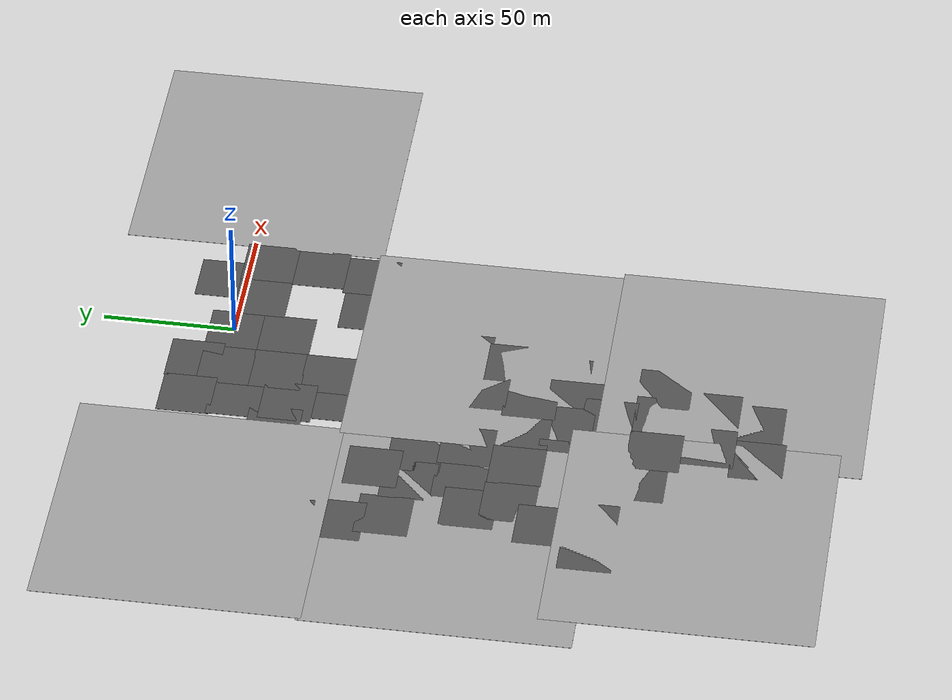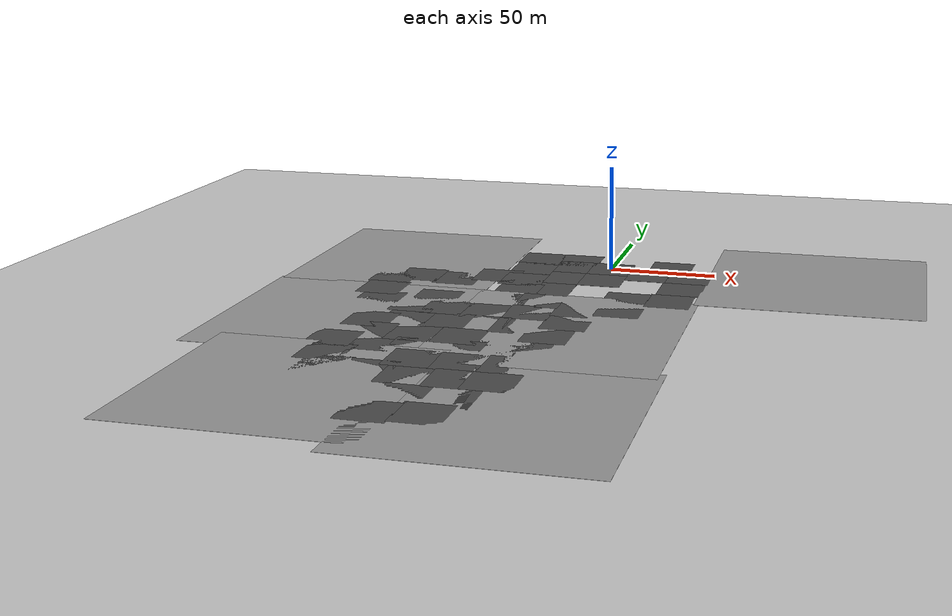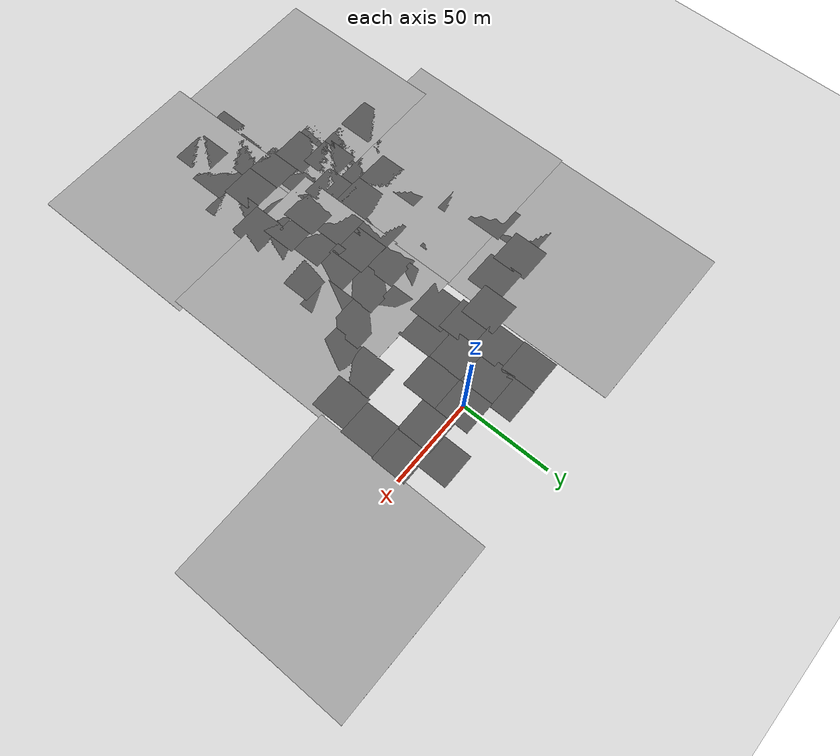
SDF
<sdf version="1.6">
 <world name="default">
  <light name="sun" type="directional">
   <pose>0 0 10 0 -0 0</pose>
   <diffuse>0.8 0.8 0.8 1</diffuse>
   <specular>0.2 0.2 0.2 1</specular>
   <attenuation>
    <range>1000</range>
    <constant>0.9</constant>
    <linear>0.01</linear>
    <quadratic>0.001</quadratic>
   </attenuation>
   <direction>-0.5 0.1 -0.9</direction>
  </light>
  <model name="ground_plane">
   <static>1</static>
   <link name="link">
    <collision name="collision">
     <geometry><plane><normal>0 0 1</normal><size>100 100</size></plane></geometry>
     <surface><friction><ode><mu>100</mu><mu2>50</mu2></ode></friction></surface>
    </collision>
    <visual name="visual">
     <cast_shadows>0</cast_shadows>
     <geometry><plane><normal>0 0 1</normal><size>100 100</size></plane></geometry>
     <material>
      <script><uri>file://media/materials/scripts/gazebo.material</uri><name>Gazebo/Grey</name></script>
     </material>
    </visual>
    <velocity_decay><linear>0</linear><angular>0</angular></velocity_decay>
   </link>
  </model>
  <physics name="default_physics" default="0" type="ode">
   <max_step_size>0.01</max_step_size>
   <real_time_factor>1</real_time_factor>
   <real_time_update_rate>100</real_time_update_rate>
  </physics>
  <scene><ambient>0.4 0.4 0.4 1</ambient><background>0.7 0.7 0.7 1</background><shadows>1</shadows></scene>
  <model name="asphalt_plane">
   <static>1</static>
   <link name="link">
    <collision name="collision"><geometry><box><size>20 20 0.1</size></box></geometry></collision>
    <visual name="visual">
     <cast_shadows>0</cast_shadows>
     <geometry><box><size>20 20 0.1</size></box></geometry>
     <material>
      <script>
       <uri>model://asphalt_plane/materials/scripts</uri>
       <uri>model://asphalt_plane/materials/textures</uri>
       <name>vrc/asphalt</name>
      </script>
     </material>
    </visual>
    <velocity_decay><linear>0</linear><angular>0</angular></velocity_decay>
   </link>
   <pose>0.076733 -0.110379 0 0 -0 0</pose>
  </model>
  <gravity>0 0 -9.8</gravity>
  <magnetic_field>6e-06 2.3e-05 -4.2e-05</magnetic_field>
  <atmosphere type="adiabatic"/>
  <spherical_coordinates>
   <surface_model>EARTH_WGS84</surface_model>
   <latitude_deg>0</latitude_deg>
   <longitude_deg>0</longitude_deg>
   <elevation>0</elevation>
   <heading_deg>0</heading_deg>
  </spherical_coordinates>
  <model name="ground_plane_0">
   <static>1</static>
   <link name="link">
    <collision name="collision">
     <geometry><plane><normal>0 0 1</normal><size>100 100</size></plane></geometry>
     <surface><friction><ode><mu>100</mu><mu2>50</mu2></ode></friction></surface>
    </collision>
    <visual name="visual">
     <cast_shadows>0</cast_shadows>
     <geometry><plane><normal>0 0 1</normal><size>100 100</size></plane></geometry>
     <material>
      <script><uri>file://media/materials/scripts/gazebo.material</uri><name>Gazebo/Grey</name></script>
     </material>
    </visual>
   </link>
   <pose>-0.063796 -98.283 0 0 -0 0</pose>
  </model>
  <model name="ground_plane_1">
   <static>1</static>
   <link name="link">
    <collision name="collision">
     <geometry><plane><normal>0 0 1</normal><size>100 100</size></plane></geometry>
     <surface><friction><ode><mu>100</mu><mu2>50</mu2></ode></friction></surface>
    </collision>
    <visual name="visual">
     <cast_shadows>0</cast_shadows>
     <geometry><plane><normal>0 0 1</normal><size>100 100</size></plane></geometry>
     <material>
      <script><uri>file://media/materials/scripts/gazebo.material</uri><name>Gazebo/Grey</name></script>
     </material>
    </visual>
   </link>
   <pose>-98.0261 0.162124 0 0 -0 0</pose>
  </model>
  <model name="ground_plane_2">
   <static>1</static>
   <link name="link">
    <collision name="collision">
     <geometry><plane><normal>0 0 1</normal><size>100 100</size></plane></geometry>
     <surface><friction><ode><mu>100</mu><mu2>50</mu2></ode></friction></surface>
    </collision>
    <visual name="visual">
     <cast_shadows>0</cast_shadows>
     <geometry><plane><normal>0 0 1</normal><size>100 100</size></plane></geometry>
     <material>
      <script><uri>file://media/materials/scripts/gazebo.material</uri><name>Gazebo/Grey</name></script>
     </material>
    </visual>
   </link>
   <pose>-98.9441 -97.9294 0 0 -0 0</pose>
  </model>
  <model name="asphalt_plane_0">
   <static>1</static>
   <link name="link">
    <collision name="collision"><geometry><box><size>20 20 0.1</size></box></geometry></collision>
    <visual name="visual">
     <cast_shadows>0</cast_shadows>
     <geometry><box><size>20 20 0.1</size></box></geometry>
     <material>
      <script>
       <uri>model://asphalt_plane/materials/scripts</uri>
       <uri>model://asphalt_plane/materials/textures</uri>
       <name>vrc/asphalt</name>
      </script>
     </material>
    </visual>
   </link>
   <pose>0.01977 -20.0491 0 0 -0 0</pose>
  </model>
  <model name="asphalt_plane_1">
   <static>1</static>
   <link name="link">
    <collision name="collision"><geometry><box><size>20 20 0.1</size></box></geometry></collision>
    <visual name="visual">
     <cast_shadows>0</cast_shadows>
     <geometry><box><size>20 20 0.1</size></box></geometry>
     <material>
      <script>
       <uri>model://asphalt_plane/materials/scripts</uri>
       <uri>model://asphalt_plane/materials/textures</uri>
       <name>vrc/asphalt</name>
      </script>
     </material>
    </visual>
   </link>
   <pose>-19.6882 -0.212934 0 0 -0 0</pose>
  </model>
  <model name="asphalt_plane_2">
   <static>1</static>
   <link name="link">
    <collision name="collision"><geometry><box><size>20 20 0.1</size></box></geometry></collision>
    <visual name="visual">
     <cast_shadows>0</cast_shadows>
     <geometry><box><size>20 20 0.1</size></box></geometry>
     <material>
      <script>
       <uri>model://asphalt_plane/materials/scripts</uri>
       <uri>model://asphalt_plane/materials/textures</uri>
       <name>vrc/asphalt</name>
      </script>
     </material>
    </visual>
   </link>
   <pose>-19.6524 -19.9338 0 0 -0 0</pose>
  </model>
  <model name="asphalt_plane_2_clone">
   <static>1</static>
   <link name="link">
    <collision name="collision"><geometry><box><size>20 20 0.1</size></box></geometry></collision>
    <visual name="visual">
     <cast_shadows>0</cast_shadows>
     <geometry><box><size>20 20 0.1</size></box></geometry>
     <material>
      <script>
       <uri>model://asphalt_plane/materials/scripts</uri>
       <uri>model://asphalt_plane/materials/textures</uri>
       <name>vrc/asphalt</name>
      </script>
     </material>
    </visual>
   </link>
   <pose>-19.6446 -39.5517 0 0 -0 0</pose>
  </model>
  <model name="asphalt_plane_2_clone_0">
   <static>1</static>
   <link name="link">
    <collision name="collision"><geometry><box><size>20 20 0.1</size></box></geometry></collision>
    <visual name="visual">
     <cast_shadows>0</cast_shadows>
     <geometry><box><size>20 20 0.1</size></box></geometry>
     <material>
      <script>
       <uri>model://asphalt_plane/materials/scripts</uri>
       <uri>model://asphalt_plane/materials/textures</uri>
       <name>vrc/asphalt</name>
      </script>
     </material>
    </visual>
   </link>
   <pose>-19.4842 -58.9984 0 0 -0 0</pose>
  </model>
  <model name="asphalt_plane_2_clone_1">
   <static>1</static>
   <link name="link">
    <collision name="collision"><geometry><box><size>20 20 0.1</size></box></geometry></collision>
    <visual name="visual">
     <cast_shadows>0</cast_shadows>
     <geometry><box><size>20 20 0.1</size></box></geometry>
     <material>
      <script>
       <uri>model://asphalt_plane/materials/scripts</uri>
       <uri>model://asphalt_plane/materials/textures</uri>
       <name>vrc/asphalt</name>
      </script>
     </material>
    </visual>
   </link>
   <pose>-19.5191 -77.3836 0 0 -0 0</pose>
  </model>
  <model name="asphalt_plane_3">
   <static>1</static>
   <link name="link">
    <collision name="collision"><geometry><box><size>20 20 0.1</size></box></geometry></collision>
    <visual name="visual">
     <cast_shadows>0</cast_shadows>
     <geometry><box><size>20 20 0.1</size></box></geometry>
     <material>
      <script>
       <uri>model://asphalt_plane/materials/scripts</uri>
       <uri>model://asphalt_plane/materials/textures</uri>
       <name>vrc/asphalt</name>
      </script>
     </material>
    </visual>
   </link>
   <pose>19.6148 -7.48523 0 0 -0 0</pose>
  </model>
  <model name="asphalt_plane_4">
   <static>1</static>
   <link name="link">
    <collision name="collision"><geometry><box><size>20 20 0.1</size></box></geometry></collision>
    <visual name="visual">
     <cast_shadows>0</cast_shadows>
     <geometry><box><size>20 20 0.1</size></box></geometry>
     <material>
      <script>
       <uri>model://asphalt_plane/materials/scripts</uri>
       <uri>model://asphalt_plane/materials/textures</uri>
       <name>vrc/asphalt</name>
      </script>
     </material>
    </visual>
   </link>
   <pose>39.1505 -7.26642 0 0 -0 0</pose>
  </model>
  <model name="asphalt_plane_5">
   <static>1</static>
   <link name="link">
    <collision name="collision"><geometry><box><size>20 20 0.1</size></box></geometry></collision>
    <visual name="visual">
     <cast_shadows>0</cast_shadows>
     <geometry><box><size>20 20 0.1</size></box></geometry>
     <material>
      <script>
       <uri>model://asphalt_plane/materials/scripts</uri>
       <uri>model://asphalt_plane/materials/textures</uri>
       <name>vrc/asphalt</name>
      </script>
     </material>
    </visual>
   </link>
   <pose>-19.7363 -97.2125 0 0 -0 0</pose>
  </model>
  <model name="ground_plane_3">
   <static>1</static>
   <link name="link">
    <collision name="collision">
     <geometry><plane><normal>0 0 1</normal><size>100 100</size></plane></geometry>
     <surface><friction><ode><mu>100</mu><mu2>50</mu2></ode></friction></surface>
    </collision>
    <visual name="visual">
     <cast_shadows>0</cast_shadows>
     <geometry><plane><normal>0 0 1</normal><size>100 100</size></plane></geometry>
     <material>
      <script><uri>file://media/materials/scripts/gazebo.material</uri><name>Gazebo/Grey</name></script>
     </material>
    </visual>
   </link>
   <pose>-86.1048 -183.839 0 0 -0 0</pose>
  </model>
  <model name="ground_plane_4">
   <static>1</static>
   <link name="link">
    <collision name="collision">
     <geometry><plane><normal>0 0 1</normal><size>100 100</size></plane></geometry>
     <surface><friction><ode><mu>100</mu><mu2>50</mu2></ode></friction></surface>
    </collision>
    <visual name="visual">
     <cast_shadows>0</cast_shadows>
     <geometry><plane><normal>0 0 1</normal><size>100 100</size></plane></geometry>
     <material>
      <script><uri>file://media/materials/scripts/gazebo.material</uri><name>Gazebo/Grey</name></script>
     </material>
    </visual>
   </link>
   <pose>2.44047 -192.368 0 0 -0 0</pose>
  </model>
  <model name="stone_10_2_5_1cm">
   <link name="link">
    <pose>0 0 0.005 0 -0 0</pose>
    <inertial>
     <mass>0.0628</mass>
     <inertia>
      <ixx>3.79417e-06</ixx>
      <ixy>0</ixy>
      <ixz>0</ixz>
      <iyy>5.28567e-05</iyy>
      <iyz>0</iyz>
      <izz>5.56042e-05</izz>
     </inertia>
    </inertial>
    <collision name="collision">
     <geometry><box><size>0.1 0.025 0.01</size></box></geometry>
     <surface>
      <contact>
       <poissons_ratio>0.15</poissons_ratio>
       <elastic_modulus>8e+10</elastic_modulus>
       <ode><kp>100000</kp><kd>100</kd><max_vel>100</max_vel><min_depth>0.001</min_depth></ode>
      </contact>
      <friction>
       <torsional>
        <coefficient>1</coefficient>
        <use_patch_radius>0</use_patch_radius>
        <surface_radius>0.01</surface_radius>
       </torsional>
      </friction>
     </surface>
    </collision>
    <visual name="visual">
     <geometry><box><size>0.1 0.025 0.01</size></box></geometry>
     <material>
      <script><uri>file://media/materials/scripts/gazebo.material</uri><name>Gazebo/Grey</name></script>
     </material>
    </visual>
   </link>
   <pose>-29.3092 -168.193 0.048999 -6.1e-05 -0 -0.477207</pose>
  </model>
  <model name="ground_plane_5">
   <static>1</static>
   <link name="link">
    <collision name="collision">
     <geometry><plane><normal>0 0 1</normal><size>100 100</size></plane></geometry>
     <surface><friction><ode><mu>100</mu><mu2>50</mu2></ode></friction></surface>
    </collision>
    <visual name="visual">
     <cast_shadows>0</cast_shadows>
     <geometry><plane><normal>0 0 1</normal><size>100 100</size></plane></geometry>
     <material>
      <script><uri>file://media/materials/scripts/gazebo.material</uri><name>Gazebo/Grey</name></script>
     </material>
    </visual>
   </link>
   <pose>97.9072 0.069216 0 0 -0 0</pose>
  </model>
  <model name="asphalt_plane_5_clone_0">
   <static>1</static>
   <link name="link">
    <collision name="collision"><geometry><box><size>20 20 0.1</size></box></geometry></collision>
    <visual name="visual">
     <cast_shadows>0</cast_shadows>
     <geometry><box><size>20 20 0.1</size></box></geometry>
     <material>
      <script>
       <uri>model://asphalt_plane/materials/scripts</uri>
       <uri>model://asphalt_plane/materials/textures</uri>
       <name>vrc/asphalt</name>
      </script>
     </material>
    </visual>
   </link>
   <pose>-7.93096 -126.704 0 0 -0 0</pose>
  </model>
  <model name="asphalt_plane_5_clone_1">
   <static>1</static>
   <link name="link">
    <collision name="collision"><geometry><box><size>20 20 0.1</size></box></geometry></collision>
    <visual name="visual">
     <cast_shadows>0</cast_shadows>
     <geometry><box><size>20 20 0.1</size></box></geometry>
     <material>
      <script>
       <uri>model://asphalt_plane/materials/scripts</uri>
       <uri>model://asphalt_plane/materials/textures</uri>
       <name>vrc/asphalt</name>
      </script>
     </material>
    </visual>
   </link>
   <pose>-8.9647 -145.603 0 0 -0 0</pose>
  </model>
  <model name="asphalt_plane_5_clone_2">
   <static>1</static>
   <link name="link">
    <collision name="collision"><geometry><box><size>20 20 0.1</size></box></geometry></collision>
    <visual name="visual">
     <cast_shadows>0</cast_shadows>
     <geometry><box><size>20 20 0.1</size></box></geometry>
     <material>
      <script>
       <uri>model://asphalt_plane/materials/scripts</uri>
       <uri>model://asphalt_plane/materials/textures</uri>
       <name>vrc/asphalt</name>
      </script>
     </material>
    </visual>
   </link>
   <pose>-22.2525 -116.315 0 0 -0 0</pose>
  </model>
  <model name="asphalt_plane_5_clone_3">
   <static>1</static>
   <link name="link">
    <collision name="collision"><geometry><box><size>20 20 0.1</size></box></geometry></collision>
    <visual name="visual">
     <cast_shadows>0</cast_shadows>
     <geometry><box><size>20 20 0.1</size></box></geometry>
     <material>
      <script>
       <uri>model://asphalt_plane/materials/scripts</uri>
       <uri>model://asphalt_plane/materials/textures</uri>
       <name>vrc/asphalt</name>
      </script>
     </material>
    </visual>
   </link>
   <pose>-38.7356 -115.596 0 0 -0 0</pose>
  </model>
  <model name="asphalt_plane_5_clone_4">
   <static>1</static>
   <link name="link">
    <collision name="collision"><geometry><box><size>20 20 0.1</size></box></geometry></collision>
    <visual name="visual">
     <cast_shadows>0</cast_shadows>
     <geometry><box><size>20 20 0.1</size></box></geometry>
     <material>
      <script>
       <uri>model://asphalt_plane/materials/scripts</uri>
       <uri>model://asphalt_plane/materials/textures</uri>
       <name>vrc/asphalt</name>
      </script>
     </material>
    </visual>
   </link>
   <pose>-28.6369 -146.446 0 0 -0 0</pose>
  </model>
  <model name="asphalt_plane_5_clone_5">
   <static>1</static>
   <link name="link">
    <collision name="collision"><geometry><box><size>20 20 0.1</size></box></geometry></collision>
    <visual name="visual">
     <cast_shadows>0</cast_shadows>
     <geometry><box><size>20 20 0.1</size></box></geometry>
     <material>
      <script>
       <uri>model://asphalt_plane/materials/scripts</uri>
       <uri>model://asphalt_plane/materials/textures</uri>
       <name>vrc/asphalt</name>
      </script>
     </material>
    </visual>
   </link>
   <pose>-48.1735 -146.266 0 0 -0 0</pose>
  </model>
  <model name="asphalt_plane_5_clone_6">
   <static>1</static>
   <link name="link">
    <collision name="collision"><geometry><box><size>20 20 0.1</size></box></geometry></collision>
    <visual name="visual">
     <cast_shadows>0</cast_shadows>
     <geometry><box><size>20 20 0.1</size></box></geometry>
     <material>
      <script>
       <uri>model://asphalt_plane/materials/scripts</uri>
       <uri>model://asphalt_plane/materials/textures</uri>
       <name>vrc/asphalt</name>
      </script>
     </material>
    </visual>
   </link>
   <pose>-67.1863 -146.209 0 0 -0 0</pose>
  </model>
  <model name="asphalt_plane_5_clone_7">
   <static>1</static>
   <link name="link">
    <collision name="collision"><geometry><box><size>20 20 0.1</size></box></geometry></collision>
    <visual name="visual">
     <cast_shadows>0</cast_shadows>
     <geometry><box><size>20 20 0.1</size></box></geometry>
     <material>
      <script>
       <uri>model://asphalt_plane/materials/scripts</uri>
       <uri>model://asphalt_plane/materials/textures</uri>
       <name>vrc/asphalt</name>
      </script>
     </material>
    </visual>
   </link>
   <pose>-84.5355 -146.315 0 0 -0 0</pose>
  </model>
  <model name="asphalt_plane_5_clone_8">
   <static>1</static>
   <link name="link">
    <collision name="collision"><geometry><box><size>20 20 0.1</size></box></geometry></collision>
    <visual name="visual">
     <cast_shadows>0</cast_shadows>
     <geometry><box><size>20 20 0.1</size></box></geometry>
     <material>
      <script>
       <uri>model://asphalt_plane/materials/scripts</uri>
       <uri>model://asphalt_plane/materials/textures</uri>
       <name>vrc/asphalt</name>
      </script>
     </material>
    </visual>
   </link>
   <pose>-52.87 -132.336 0 0 -0 0</pose>
  </model>
  <model name="asphalt_plane_5_clone_9">
   <static>1</static>
   <link name="link">
    <collision name="collision"><geometry><box><size>20 20 0.1</size></box></geometry></collision>
    <visual name="visual">
     <cast_shadows>0</cast_shadows>
     <geometry><box><size>20 20 0.1</size></box></geometry>
     <material>
      <script>
       <uri>model://asphalt_plane/materials/scripts</uri>
       <uri>model://asphalt_plane/materials/textures</uri>
       <name>vrc/asphalt</name>
      </script>
     </material>
    </visual>
   </link>
   <pose>-58.5655 -115.859 0 0 -0 0</pose>
  </model>
  <model name="asphalt_plane_5_clone_10">
   <static>1</static>
   <link name="link">
    <collision name="collision"><geometry><box><size>20 20 0.1</size></box></geometry></collision>
    <visual name="visual">
     <cast_shadows>0</cast_shadows>
     <geometry><box><size>20 20 0.1</size></box></geometry>
     <material>
      <script>
       <uri>model://asphalt_plane/materials/scripts</uri>
       <uri>model://asphalt_plane/materials/textures</uri>
       <name>vrc/asphalt</name>
      </script>
     </material>
    </visual>
   </link>
   <pose>-78.1381 -115.484 0 0 -0 0</pose>
  </model>
  <model name="asphalt_plane_5_clone_11">
   <static>1</static>
   <link name="link">
    <collision name="collision"><geometry><box><size>20 20 0.1</size></box></geometry></collision>
    <visual name="visual">
     <cast_shadows>0</cast_shadows>
     <geometry><box><size>20 20 0.1</size></box></geometry>
     <material>
      <script>
       <uri>model://asphalt_plane/materials/scripts</uri>
       <uri>model://asphalt_plane/materials/textures</uri>
       <name>vrc/asphalt</name>
      </script>
     </material>
    </visual>
   </link>
   <pose>-70.1783 -131.013 0 0 -0 0</pose>
  </model>
  <model name="asphalt_plane_5_clone_12">
   <static>1</static>
   <link name="link">
    <collision name="collision"><geometry><box><size>20 20 0.1</size></box></geometry></collision>
    <visual name="visual">
     <cast_shadows>0</cast_shadows>
     <geometry><box><size>20 20 0.1</size></box></geometry>
     <material>
      <script>
       <uri>model://asphalt_plane/materials/scripts</uri>
       <uri>model://asphalt_plane/materials/textures</uri>
       <name>vrc/asphalt</name>
      </script>
     </material>
    </visual>
   </link>
   <pose>-88.5228 -129.35 0 0 -0 0</pose>
  </model>
  <model name="asphalt_plane_5_clone_13">
   <static>1</static>
   <link name="link">
    <collision name="collision"><geometry><box><size>20 20 0.1</size></box></geometry></collision>
    <visual name="visual">
     <cast_shadows>0</cast_shadows>
     <geometry><box><size>20 20 0.1</size></box></geometry>
     <material>
      <script>
       <uri>model://asphalt_plane/materials/scripts</uri>
       <uri>model://asphalt_plane/materials/textures</uri>
       <name>vrc/asphalt</name>
      </script>
     </material>
    </visual>
   </link>
   <pose>-34.3268 -96.5029 0 0 -0 0</pose>
  </model>
  <model name="asphalt_plane_5_clone_14">
   <static>1</static>
   <link name="link">
    <collision name="collision"><geometry><box><size>20 20 0.1</size></box></geometry></collision>
    <visual name="visual">
     <cast_shadows>0</cast_shadows>
     <geometry><box><size>20 20 0.1</size></box></geometry>
     <material>
      <script>
       <uri>model://asphalt_plane/materials/scripts</uri>
       <uri>model://asphalt_plane/materials/textures</uri>
       <name>vrc/asphalt</name>
      </script>
     </material>
    </visual>
   </link>
   <pose>-50.7553 -96.1806 0 0 -0 0</pose>
  </model>
  <model name="asphalt_plane_5_clone_15">
   <static>1</static>
   <link name="link">
    <collision name="collision"><geometry><box><size>20 20 0.1</size></box></geometry></collision>
    <visual name="visual">
     <cast_shadows>0</cast_shadows>
     <geometry><box><size>20 20 0.1</size></box></geometry>
     <material>
      <script>
       <uri>model://asphalt_plane/materials/scripts</uri>
       <uri>model://asphalt_plane/materials/textures</uri>
       <name>vrc/asphalt</name>
      </script>
     </material>
    </visual>
   </link>
   <pose>-37.9117 -79.3543 0 0 -0 0</pose>
  </model>
  <model name="asphalt_plane_5_clone_16">
   <static>1</static>
   <link name="link">
    <collision name="collision"><geometry><box><size>20 20 0.1</size></box></geometry></collision>
    <visual name="visual">
     <cast_shadows>0</cast_shadows>
     <geometry><box><size>20 20 0.1</size></box></geometry>
     <material>
      <script>
       <uri>model://asphalt_plane/materials/scripts</uri>
       <uri>model://asphalt_plane/materials/textures</uri>
       <name>vrc/asphalt</name>
      </script>
     </material>
    </visual>
   </link>
   <pose>-56.6114 -77.9014 0 0 -0 0</pose>
  </model>
  <model name="asphalt_plane_5_clone_17">
   <static>1</static>
   <link name="link">
    <collision name="collision"><geometry><box><size>20 20 0.1</size></box></geometry></collision>
    <visual name="visual">
     <cast_shadows>0</cast_shadows>
     <geometry><box><size>20 20 0.1</size></box></geometry>
     <material>
      <script>
       <uri>model://asphalt_plane/materials/scripts</uri>
       <uri>model://asphalt_plane/materials/textures</uri>
       <name>vrc/asphalt</name>
      </script>
     </material>
    </visual>
   </link>
   <pose>-68.6377 -96.4126 0 0 -0 0</pose>
  </model>
  <model name="asphalt_plane_5_clone_18">
   <static>1</static>
   <link name="link">
    <collision name="collision"><geometry><box><size>20 20 0.1</size></box></geometry></collision>
    <visual name="visual">
     <cast_shadows>0</cast_shadows>
     <geometry><box><size>20 20 0.1</size></box></geometry>
     <material>
      <script>
       <uri>model://asphalt_plane/materials/scripts</uri>
       <uri>model://asphalt_plane/materials/textures</uri>
       <name>vrc/asphalt</name>
      </script>
     </material>
    </visual>
   </link>
   <pose>-71.5659 -77.411 0 0 -0 0</pose>
  </model>
  <model name="asphalt_plane_5_clone_19">
   <static>1</static>
   <link name="link">
    <collision name="collision"><geometry><box><size>20 20 0.1</size></box></geometry></collision>
    <visual name="visual">
     <cast_shadows>0</cast_shadows>
     <geometry><box><size>20 20 0.1</size></box></geometry>
     <material>
      <script>
       <uri>model://asphalt_plane/materials/scripts</uri>
       <uri>model://asphalt_plane/materials/textures</uri>
       <name>vrc/asphalt</name>
      </script>
     </material>
    </visual>
   </link>
   <pose>-83.209 -101.382 0 0 -0 0</pose>
  </model>
  <model name="asphalt_plane_5_clone_20">
   <static>1</static>
   <link name="link">
    <collision name="collision"><geometry><box><size>20 20 0.1</size></box></geometry></collision>
    <visual name="visual">
     <cast_shadows>0</cast_shadows>
     <geometry><box><size>20 20 0.1</size></box></geometry>
     <material>
      <script>
       <uri>model://asphalt_plane/materials/scripts</uri>
       <uri>model://asphalt_plane/materials/textures</uri>
       <name>vrc/asphalt</name>
      </script>
     </material>
    </visual>
   </link>
   <pose>-99.3496 -147.067 0 0 -0 0</pose>
  </model>
  <model name="asphalt_plane_5_clone_21">
   <static>1</static>
   <link name="link">
    <collision name="collision"><geometry><box><size>20 20 0.1</size></box></geometry></collision>
    <visual name="visual">
     <cast_shadows>0</cast_shadows>
     <geometry><box><size>20 20 0.1</size></box></geometry>
     <material>
      <script>
       <uri>model://asphalt_plane/materials/scripts</uri>
       <uri>model://asphalt_plane/materials/textures</uri>
       <name>vrc/asphalt</name>
      </script>
     </material>
    </visual>
   </link>
   <pose>-9.79735 -165.267 0 0 -0 0</pose>
  </model>
  <model name="asphalt_plane_5_clone_22">
   <static>1</static>
   <link name="link">
    <collision name="collision"><geometry><box><size>20 20 0.1</size></box></geometry></collision>
    <visual name="visual">
     <cast_shadows>0</cast_shadows>
     <geometry><box><size>20 20 0.1</size></box></geometry>
     <material>
      <script>
       <uri>model://asphalt_plane/materials/scripts</uri>
       <uri>model://asphalt_plane/materials/textures</uri>
       <name>vrc/asphalt</name>
      </script>
     </material>
    </visual>
   </link>
   <pose>-24.7331 -165.462 0 0 -0 0</pose>
  </model>
  <model name="asphalt_plane_5_clone_23">
   <static>1</static>
   <link name="link">
    <collision name="collision"><geometry><box><size>20 20 0.1</size></box></geometry></collision>
    <visual name="visual">
     <cast_shadows>0</cast_shadows>
     <geometry><box><size>20 20 0.1</size></box></geometry>
     <material>
      <script>
       <uri>model://asphalt_plane/materials/scripts</uri>
       <uri>model://asphalt_plane/materials/textures</uri>
       <name>vrc/asphalt</name>
      </script>
     </material>
    </visual>
   </link>
   <pose>-34.6487 -131.077 0 0 -0 0</pose>
  </model>
  <model name="asphalt_plane_5_clone_24">
   <static>1</static>
   <link name="link">
    <collision name="collision"><geometry><box><size>20 20 0.1</size></box></geometry></collision>
    <visual name="visual">
     <cast_shadows>0</cast_shadows>
     <geometry><box><size>20 20 0.1</size></box></geometry>
     <material>
      <script>
       <uri>model://asphalt_plane/materials/scripts</uri>
       <uri>model://asphalt_plane/materials/textures</uri>
       <name>vrc/asphalt</name>
      </script>
     </material>
    </visual>
   </link>
   <pose>-20.269 -132.409 0 0 -0 0</pose>
  </model>
  <model name="asphalt_plane_5_clone_25">
   <static>1</static>
   <link name="link">
    <collision name="collision"><geometry><box><size>20 20 0.1</size></box></geometry></collision>
    <visual name="visual">
     <cast_shadows>0</cast_shadows>
     <geometry><box><size>20 20 0.1</size></box></geometry>
     <material>
      <script>
       <uri>model://asphalt_plane/materials/scripts</uri>
       <uri>model://asphalt_plane/materials/textures</uri>
       <name>vrc/asphalt</name>
      </script>
     </material>
    </visual>
   </link>
   <pose>-43.7659 -165.227 0 0 -0 0</pose>
  </model>
  <model name="asphalt_plane_5_clone_26">
   <static>1</static>
   <link name="link">
    <collision name="collision"><geometry><box><size>20 20 0.1</size></box></geometry></collision>
    <visual name="visual">
     <cast_shadows>0</cast_shadows>
     <geometry><box><size>20 20 0.1</size></box></geometry>
     <material>
      <script>
       <uri>model://asphalt_plane/materials/scripts</uri>
       <uri>model://asphalt_plane/materials/textures</uri>
       <name>vrc/asphalt</name>
      </script>
     </material>
    </visual>
   </link>
   <pose>-60.5687 -161.345 0 0 -0 0</pose>
  </model>
  <model name="asphalt_plane_5_clone_27">
   <static>1</static>
   <link name="link">
    <collision name="collision"><geometry><box><size>20 20 0.1</size></box></geometry></collision>
    <visual name="visual">
     <cast_shadows>0</cast_shadows>
     <geometry><box><size>20 20 0.1</size></box></geometry>
     <material>
      <script>
       <uri>model://asphalt_plane/materials/scripts</uri>
       <uri>model://asphalt_plane/materials/textures</uri>
       <name>vrc/asphalt</name>
      </script>
     </material>
    </visual>
   </link>
   <pose>-79.3279 -160.387 0 0 -0 0</pose>
  </model>
  <model name="asphalt_plane_5_clone_28">
   <static>1</static>
   <link name="link">
    <collision name="collision"><geometry><box><size>20 20 0.1</size></box></geometry></collision>
    <visual name="visual">
     <cast_shadows>0</cast_shadows>
     <geometry><box><size>20 20 0.1</size></box></geometry>
     <material>
      <script>
       <uri>model://asphalt_plane/materials/scripts</uri>
       <uri>model://asphalt_plane/materials/textures</uri>
       <name>vrc/asphalt</name>
      </script>
     </material>
    </visual>
   </link>
   <pose>-38.7068 -184.711 0 0 -0 0</pose>
  </model>
  <model name="asphalt_plane_5_clone_29">
   <static>1</static>
   <link name="link">
    <collision name="collision"><geometry><box><size>20 20 0.1</size></box></geometry></collision>
    <visual name="visual">
     <cast_shadows>0</cast_shadows>
     <geometry><box><size>20 20 0.1</size></box></geometry>
     <material>
      <script>
       <uri>model://asphalt_plane/materials/scripts</uri>
       <uri>model://asphalt_plane/materials/textures</uri>
       <name>vrc/asphalt</name>
      </script>
     </material>
    </visual>
   </link>
   <pose>-19.6627 -184.505 0 0 -0 0</pose>
  </model>
  <model name="asphalt_plane_5_clone_31">
   <static>1</static>
   <link name="link">
    <collision name="collision"><geometry><box><size>20 20 0.1</size></box></geometry></collision>
    <visual name="visual">
     <cast_shadows>0</cast_shadows>
     <geometry><box><size>20 20 0.1</size></box></geometry>
     <material>
      <script>
       <uri>model://asphalt_plane/materials/scripts</uri>
       <uri>model://asphalt_plane/materials/textures</uri>
       <name>vrc/asphalt</name>
      </script>
     </material>
    </visual>
   </link>
   <pose>-24.036 -201.434 0 0 -0 0</pose>
  </model>
  <model name="asphalt_plane_5_clone_32">
   <static>1</static>
   <link name="link">
    <collision name="collision"><geometry><box><size>20 20 0.1</size></box></geometry></collision>
    <visual name="visual">
     <cast_shadows>0</cast_shadows>
     <geometry><box><size>20 20 0.1</size></box></geometry>
     <material>
      <script>
       <uri>model://asphalt_plane/materials/scripts</uri>
       <uri>model://asphalt_plane/materials/textures</uri>
       <name>vrc/asphalt</name>
      </script>
     </material>
    </visual>
   </link>
   <pose>-35.1016 -61.1183 0 0 -0 0</pose>
  </model>
  <model name="asphalt_plane_5_clone_33">
   <static>1</static>
   <link name="link">
    <collision name="collision"><geometry><box><size>20 20 0.1</size></box></geometry></collision>
    <visual name="visual">
     <cast_shadows>0</cast_shadows>
     <geometry><box><size>20 20 0.1</size></box></geometry>
     <material>
      <script>
       <uri>model://asphalt_plane/materials/scripts</uri>
       <uri>model://asphalt_plane/materials/textures</uri>
       <name>vrc/asphalt</name>
      </script>
     </material>
    </visual>
   </link>
   <pose>-34.092 -43.6181 0 0 -0 0</pose>
  </model>
  <model name="asphalt_plane_5_clone_34">
   <static>1</static>
   <link name="link">
    <collision name="collision"><geometry><box><size>20 20 0.1</size></box></geometry></collision>
    <visual name="visual">
     <cast_shadows>0</cast_shadows>
     <geometry><box><size>20 20 0.1</size></box></geometry>
     <material>
      <script>
       <uri>model://asphalt_plane/materials/scripts</uri>
       <uri>model://asphalt_plane/materials/textures</uri>
       <name>vrc/asphalt</name>
      </script>
     </material>
    </visual>
   </link>
   <pose>-36.231 -26.4322 0 0 -0 0</pose>
  </model>
  <model name="asphalt_plane_6">
   <static>1</static>
   <link name="link">
    <collision name="collision"><geometry><box><size>20 20 0.1</size></box></geometry></collision>
    <visual name="visual">
     <cast_shadows>0</cast_shadows>
     <geometry><box><size>20 20 0.1</size></box></geometry>
     <material>
      <script>
       <uri>model://asphalt_plane/materials/scripts</uri>
       <uri>model://asphalt_plane/materials/textures</uri>
       <name>vrc/asphalt</name>
      </script>
     </material>
    </visual>
   </link>
   <pose>-43.4504 -203.365 0 0 -0 0</pose>
  </model>
  <model name="asphalt_plane_7">
   <static>1</static>
   <link name="link">
    <collision name="collision"><geometry><box><size>20 20 0.1</size></box></geometry></collision>
    <visual name="visual">
     <cast_shadows>0</cast_shadows>
     <geometry><box><size>20 20 0.1</size></box></geometry>
     <material>
      <script>
       <uri>model://asphalt_plane/materials/scripts</uri>
       <uri>model://asphalt_plane/materials/textures</uri>
       <name>vrc/asphalt</name>
      </script>
     </material>
    </visual>
   </link>
   <pose>-3.72656 -107.094 0 0 -0 0</pose>
  </model>
  <model name="asphalt_plane_7_clone">
   <static>1</static>
   <link name="link">
    <collision name="collision"><geometry><box><size>20 20 0.1</size></box></geometry></collision>
    <visual name="visual">
     <cast_shadows>0</cast_shadows>
     <geometry><box><size>20 20 0.1</size></box></geometry>
     <material>
      <script>
       <uri>model://asphalt_plane/materials/scripts</uri>
       <uri>model://asphalt_plane/materials/textures</uri>
       <name>vrc/asphalt</name>
      </script>
     </material>
    </visual>
   </link>
   <pose>-0.154472 -88.3493 0 0 -0 0</pose>
  </model>
  <model name="asphalt_plane_7_clone_0">
   <static>1</static>
   <link name="link">
    <collision name="collision"><geometry><box><size>20 20 0.1</size></box></geometry></collision>
    <visual name="visual">
     <cast_shadows>0</cast_shadows>
     <geometry><box><size>20 20 0.1</size></box></geometry>
     <material>
      <script>
       <uri>model://asphalt_plane/materials/scripts</uri>
       <uri>model://asphalt_plane/materials/textures</uri>
       <name>vrc/asphalt</name>
      </script>
     </material>
    </visual>
   </link>
   <pose>-0.049998 -69.5022 0 0 -0 0</pose>
  </model>
  <model name="asphalt_plane_7_clone_1">
   <static>1</static>
   <link name="link">
    <collision name="collision"><geometry><box><size>20 20 0.1</size></box></geometry></collision>
    <visual name="visual">
     <cast_shadows>0</cast_shadows>
     <geometry><box><size>20 20 0.1</size></box></geometry>
     <material>
      <script>
       <uri>model://asphalt_plane/materials/scripts</uri>
       <uri>model://asphalt_plane/materials/textures</uri>
       <name>vrc/asphalt</name>
      </script>
     </material>
    </visual>
   </link>
   <pose>-36.608 -6.80861 0 0 -0 0</pose>
  </model>
  <model name="asphalt_plane_7_clone_2">
   <static>1</static>
   <link name="link">
    <collision name="collision"><geometry><box><size>20 20 0.1</size></box></geometry></collision>
    <visual name="visual">
     <cast_shadows>0</cast_shadows>
     <geometry><box><size>20 20 0.1</size></box></geometry>
     <material>
      <script>
       <uri>model://asphalt_plane/materials/scripts</uri>
       <uri>model://asphalt_plane/materials/textures</uri>
       <name>vrc/asphalt</name>
      </script>
     </material>
    </visual>
   </link>
   <pose>-37.1479 11.7578 0 0 -0 0</pose>
  </model>
  <model name="asphalt_plane_7_clone_3">
   <static>1</static>
   <link name="link">
    <collision name="collision"><geometry><box><size>20 20 0.1</size></box></geometry></collision>
    <visual name="visual">
     <cast_shadows>0</cast_shadows>
     <geometry><box><size>20 20 0.1</size></box></geometry>
     <material>
      <script>
       <uri>model://asphalt_plane/materials/scripts</uri>
       <uri>model://asphalt_plane/materials/textures</uri>
       <name>vrc/asphalt</name>
      </script>
     </material>
    </visual>
   </link>
   <pose>-17.9769 12.0921 0 0 -0 0</pose>
  </model>
  <model name="asphalt_plane_7_clone_4">
   <static>1</static>
   <link name="link">
    <collision name="collision"><geometry><box><size>20 20 0.1</size></box></geometry></collision>
    <visual name="visual">
     <cast_shadows>0</cast_shadows>
     <geometry><box><size>20 20 0.1</size></box></geometry>
     <material>
      <script>
       <uri>model://asphalt_plane/materials/scripts</uri>
       <uri>model://asphalt_plane/materials/textures</uri>
       <name>vrc/asphalt</name>
      </script>
     </material>
    </visual>
   </link>
   <pose>17.0657 -48.2636 0 0 -0 0</pose>
  </model>
  <model name="asphalt_plane_7_clone_5">
   <static>1</static>
   <link name="link">
    <collision name="collision"><geometry><box><size>20 20 0.1</size></box></geometry></collision>
    <visual name="visual">
     <cast_shadows>0</cast_shadows>
     <geometry><box><size>20 20 0.1</size></box></geometry>
     <material>
      <script>
       <uri>model://asphalt_plane/materials/scripts</uri>
       <uri>model://asphalt_plane/materials/textures</uri>
       <name>vrc/asphalt</name>
      </script>
     </material>
    </visual>
   </link>
   <pose>17.95 -65.6056 0 0 -0 0</pose>
  </model>
  <model name="asphalt_plane_7_clone_6">
   <static>1</static>
   <link name="link">
    <collision name="collision"><geometry><box><size>20 20 0.1</size></box></geometry></collision>
    <visual name="visual">
     <cast_shadows>0</cast_shadows>
     <geometry><box><size>20 20 0.1</size></box></geometry>
     <material>
      <script>
       <uri>model://asphalt_plane/materials/scripts</uri>
       <uri>model://asphalt_plane/materials/textures</uri>
       <name>vrc/asphalt</name>
      </script>
     </material>
    </visual>
   </link>
   <pose>38.573 -27.163 0 0 -0 0</pose>
  </model>
  <model name="asphalt_plane_7_clone_7">
   <static>1</static>
   <link name="link">
    <collision name="collision"><geometry><box><size>20 20 0.1</size></box></geometry></collision>
    <visual name="visual">
     <cast_shadows>0</cast_shadows>
     <geometry><box><size>20 20 0.1</size></box></geometry>
     <material>
      <script>
       <uri>model://asphalt_plane/materials/scripts</uri>
       <uri>model://asphalt_plane/materials/textures</uri>
       <name>vrc/asphalt</name>
      </script>
     </material>
    </visual>
   </link>
   <pose>36.7428 -47.0838 0 0 -0 0</pose>
  </model>
  <model name="asphalt_plane_7_clone_8">
   <static>1</static>
   <link name="link">
    <collision name="collision"><geometry><box><size>20 20 0.1</size></box></geometry></collision>
    <visual name="visual">
     <cast_shadows>0</cast_shadows>
     <geometry><box><size>20 20 0.1</size></box></geometry>
     <material>
      <script>
       <uri>model://asphalt_plane/materials/scripts</uri>
       <uri>model://asphalt_plane/materials/textures</uri>
       <name>vrc/asphalt</name>
      </script>
     </material>
    </visual>
   </link>
   <pose>27.9997 8.6246 0 0 -0 0</pose>
  </model>
  <model name="asphalt_plane_7_clone_9">
   <static>1</static>
   <link name="link">
    <collision name="collision"><geometry><box><size>20 20 0.1</size></box></geometry></collision>
    <visual name="visual">
     <cast_shadows>0</cast_shadows>
     <geometry><box><size>20 20 0.1</size></box></geometry>
     <material>
      <script>
       <uri>model://asphalt_plane/materials/scripts</uri>
       <uri>model://asphalt_plane/materials/textures</uri>
       <name>vrc/asphalt</name>
      </script>
     </material>
    </visual>
   </link>
   <pose>-66.5317 -63.3208 0 0 -0 0</pose>
  </model>
  <model name="asphalt_plane_7_clone_10">
   <static>1</static>
   <link name="link">
    <collision name="collision"><geometry><box><size>20 20 0.1</size></box></geometry></collision>
    <visual name="visual">
     <cast_shadows>0</cast_shadows>
     <geometry><box><size>20 20 0.1</size></box></geometry>
     <material>
      <script>
       <uri>model://asphalt_plane/materials/scripts</uri>
       <uri>model://asphalt_plane/materials/textures</uri>
       <name>vrc/asphalt</name>
      </script>
     </material>
    </visual>
   </link>
   <pose>-50.0672 -22.9533 0 0 -0 0</pose>
  </model>
  <model name="asphalt_plane_7_clone_11">
   <static>1</static>
   <link name="link">
    <collision name="collision"><geometry><box><size>20 20 0.1</size></box></geometry></collision>
    <visual name="visual">
     <cast_shadows>0</cast_shadows>
     <geometry><box><size>20 20 0.1</size></box></geometry>
     <material>
      <script>
       <uri>model://asphalt_plane/materials/scripts</uri>
       <uri>model://asphalt_plane/materials/textures</uri>
       <name>vrc/asphalt</name>
      </script>
     </material>
    </visual>
   </link>
   <pose>-66.8301 -32.0342 0 0 -0 0</pose>
  </model>
  <model name="asphalt_plane_7_clone_12">
   <static>1</static>
   <link name="link">
    <collision name="collision"><geometry><box><size>20 20 0.1</size></box></geometry></collision>
    <visual name="visual">
     <cast_shadows>0</cast_shadows>
     <geometry><box><size>20 20 0.1</size></box></geometry>
     <material>
      <script>
       <uri>model://asphalt_plane/materials/scripts</uri>
       <uri>model://asphalt_plane/materials/textures</uri>
       <name>vrc/asphalt</name>
      </script>
     </material>
    </visual>
   </link>
   <pose>-85.5869 -29.6169 0 0 -0 0</pose>
  </model>
  <model name="asphalt_plane_7_clone_13">
   <static>1</static>
   <link name="link">
    <collision name="collision"><geometry><box><size>20 20 0.1</size></box></geometry></collision>
    <visual name="visual">
     <cast_shadows>0</cast_shadows>
     <geometry><box><size>20 20 0.1</size></box></geometry>
     <material>
      <script>
       <uri>model://asphalt_plane/materials/scripts</uri>
       <uri>model://asphalt_plane/materials/textures</uri>
       <name>vrc/asphalt</name>
      </script>
     </material>
    </visual>
   </link>
   <pose>-91.1373 -71.1258 0 0 -0 0</pose>
  </model>
  <model name="asphalt_plane_7_clone_14">
   <static>1</static>
   <link name="link">
    <collision name="collision"><geometry><box><size>20 20 0.1</size></box></geometry></collision>
    <visual name="visual">
     <cast_shadows>0</cast_shadows>
     <geometry><box><size>20 20 0.1</size></box></geometry>
     <material>
      <script>
       <uri>model://asphalt_plane/materials/scripts</uri>
       <uri>model://asphalt_plane/materials/textures</uri>
       <name>vrc/asphalt</name>
      </script>
     </material>
    </visual>
   </link>
   <pose>-95.8503 -54.2806 0 0 -0 0</pose>
  </model>
  <model name="asphalt_plane_7_clone_15">
   <static>1</static>
   <link name="link">
    <collision name="collision"><geometry><box><size>20 20 0.1</size></box></geometry></collision>
    <visual name="visual">
     <cast_shadows>0</cast_shadows>
     <geometry><box><size>20 20 0.1</size></box></geometry>
     <material>
      <script>
       <uri>model://asphalt_plane/materials/scripts</uri>
       <uri>model://asphalt_plane/materials/textures</uri>
       <name>vrc/asphalt</name>
      </script>
     </material>
    </visual>
   </link>
   <pose>-97.185 -35.2966 0 0 -0 0</pose>
  </model>
 </world>
</sdf>
